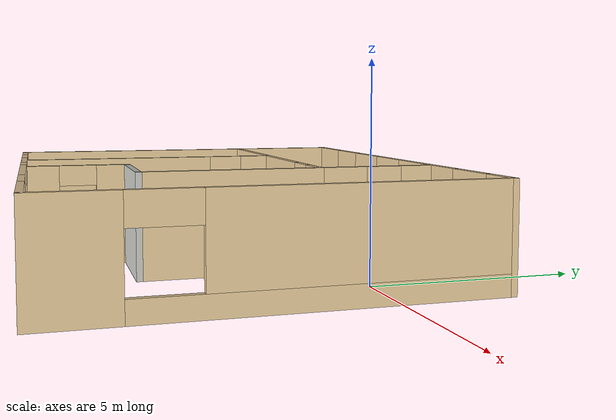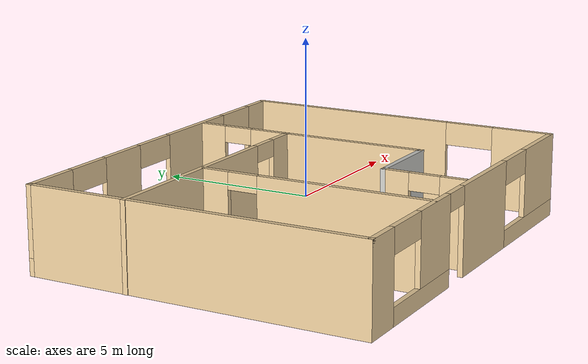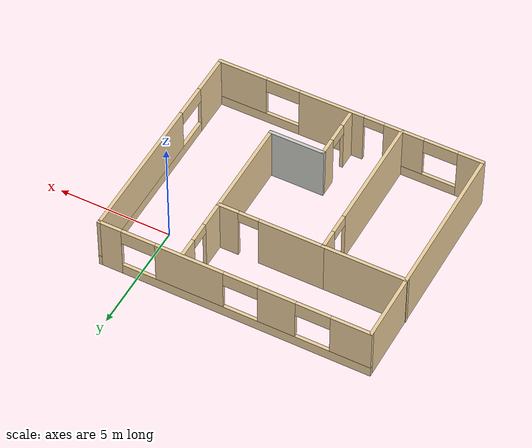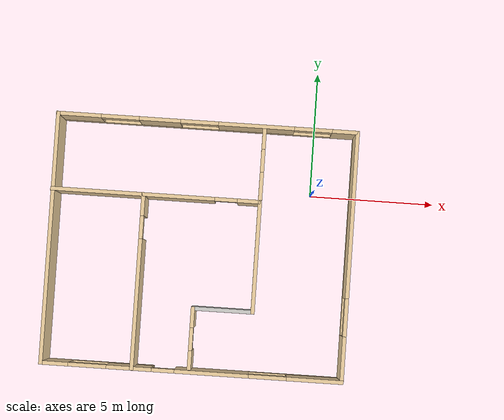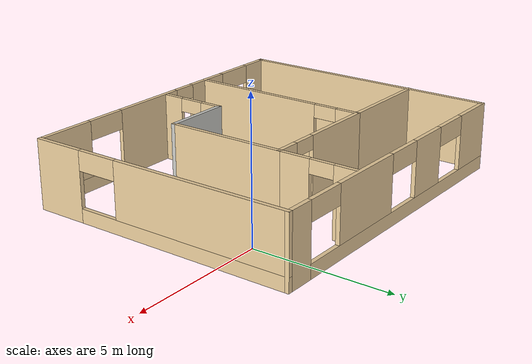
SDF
<?xml version='1.0'?>
<sdf version='1.6'>
  <model name='Building'>
    <pose frame=''>-4.28942 -2.40217 0 0 -0 0</pose>
    <link name='Wall_10'>
      <pose frame=''>-2.33489 -1.48554 0 0 -0 1.5708</pose>
      <visual name='Wall_10_Visual_0'>
        <pose frame=''>-0.911827 0 1.25 0 -0 0</pose>
        <geometry>
          <box>
            <size>5.17635 0.15 2.5</size>
          </box>
        </geometry>
        <material>
          <script>
            <uri>file://media/materials/scripts/gazebo.material</uri>
            <name>Gazebo/Grey</name>
          </script>
          <ambient>0.921569 0.807843 0.615686 1</ambient>
        </material>
        <meta>
          <layer>0</layer>
        </meta>
      </visual>
      <collision name='Wall_10_Collision_0'>
        <geometry>
          <box>
            <size>5.17635 0.15 2.5</size>
          </box>
        </geometry>
        <pose frame=''>-0.911827 0 1.25 0 -0 0</pose>
      </collision>
      <visual name='Wall_10_Visual_1'>
        <pose frame=''>3.03817 0 1.25 0 -0 0</pose>
        <geometry>
          <box>
            <size>0.923654 0.15 2.5</size>
          </box>
        </geometry>
        <material>
          <script>
            <uri>file://media/materials/scripts/gazebo.material</uri>
            <name>Gazebo/Grey</name>
          </script>
          <ambient>0.921569 0.807843 0.615686 1</ambient>
        </material>
        <meta>
          <layer>0</layer>
        </meta>
      </visual>
      <collision name='Wall_10_Collision_1'>
        <geometry>
          <box>
            <size>0.923654 0.15 2.5</size>
          </box>
        </geometry>
        <pose frame=''>3.03817 0 1.25 0 -0 0</pose>
      </collision>
      <visual name='Wall_10_Visual_2'>
        <pose frame=''>2.12635 0 2.25 0 -0 0</pose>
        <geometry>
          <box>
            <size>0.9 0.15 0.5</size>
          </box>
        </geometry>
        <material>
          <script>
            <uri>file://media/materials/scripts/gazebo.material</uri>
            <name>Gazebo/Grey</name>
          </script>
          <ambient>0.921569 0.807843 0.615686 1</ambient>
        </material>
        <meta>
          <layer>0</layer>
        </meta>
      </visual>
      <collision name='Wall_10_Collision_2'>
        <geometry>
          <box>
            <size>0.9 0.15 0.5</size>
          </box>
        </geometry>
        <pose frame=''>2.12635 0 2.25 0 -0 0</pose>
      </collision>
    </link>
    <link name='Wall_11'>
      <collision name='Wall_11_Collision'>
        <geometry>
          <box>
            <size>3.75 0.15 2.5</size>
          </box>
        </geometry>
        <pose frame=''>0 0 1.25 0 -0 0</pose>
      </collision>
      <visual name='Wall_11_Visual'>
        <pose frame=''>0 0 1.25 0 -0 0</pose>
        <geometry>
          <box>
            <size>3.75 0.15 2.5</size>
          </box>
        </geometry>
        <material>
          <script>
            <uri>file://media/materials/scripts/gazebo.material</uri>
            <name>Gazebo/Grey</name>
          </script>
          <ambient>0.921569 0.807843 0.615686 1</ambient>
        </material>
        <meta>
          <layer>0</layer>
        </meta>
      </visual>
      <pose frame=''>-4.13489 1.93946 0 0 -0 3.14159</pose>
    </link>
    <link name='Wall_13'>
      <pose frame=''>-0.034892 1.93946 0 0 -0 0</pose>
      <visual name='Wall_13_Visual_0'>
        <pose frame=''>-0.933301 0 1.25 0 -0 0</pose>
        <geometry>
          <box>
            <size>2.8834 0.15 2.5</size>
          </box>
        </geometry>
        <material>
          <script>
            <uri>file://media/materials/scripts/gazebo.material</uri>
            <name>Gazebo/Grey</name>
          </script>
          <ambient>0.921569 0.807843 0.615686 1</ambient>
        </material>
        <meta>
          <layer>0</layer>
        </meta>
      </visual>
      <collision name='Wall_13_Collision_0'>
        <geometry>
          <box>
            <size>2.8834 0.15 2.5</size>
          </box>
        </geometry>
        <pose frame=''>-0.933301 0 1.25 0 -0 0</pose>
      </collision>
      <visual name='Wall_13_Visual_1'>
        <pose frame=''>1.8917 0 1.25 0 -0 0</pose>
        <geometry>
          <box>
            <size>0.966602 0.15 2.5</size>
          </box>
        </geometry>
        <material>
          <script>
            <uri>file://media/materials/scripts/gazebo.material</uri>
            <name>Gazebo/Grey</name>
          </script>
          <ambient>0.921569 0.807843 0.615686 1</ambient>
        </material>
        <meta>
          <layer>0</layer>
        </meta>
      </visual>
      <collision name='Wall_13_Collision_1'>
        <geometry>
          <box>
            <size>0.966602 0.15 2.5</size>
          </box>
        </geometry>
        <pose frame=''>1.8917 0 1.25 0 -0 0</pose>
      </collision>
      <visual name='Wall_13_Visual_2'>
        <pose frame=''>0.958398 0 2.25 0 -0 0</pose>
        <geometry>
          <box>
            <size>0.9 0.15 0.5</size>
          </box>
        </geometry>
        <material>
          <script>
            <uri>file://media/materials/scripts/gazebo.material</uri>
            <name>Gazebo/Grey</name>
          </script>
          <ambient>0.921569 0.807843 0.615686 1</ambient>
        </material>
        <meta>
          <layer>0</layer>
        </meta>
      </visual>
      <collision name='Wall_13_Collision_2'>
        <geometry>
          <box>
            <size>0.9 0.15 0.5</size>
          </box>
        </geometry>
        <pose frame=''>0.958398 0 2.25 0 -0 0</pose>
      </collision>
    </link>
    <link name='Wall_14'>
      <pose frame=''>2.26511 3.36446 0 0 -0 1.5708</pose>
      <visual name='Wall_14_Visual_0'>
        <pose frame=''>-0.868536 0 1.25 0 -0 0</pose>
        <geometry>
          <box>
            <size>1.26293 0.15 2.5</size>
          </box>
        </geometry>
        <material>
          <script>
            <uri>file://media/materials/scripts/gazebo.material</uri>
            <name>Gazebo/Grey</name>
          </script>
          <ambient>0.921569 0.807843 0.615686 1</ambient>
        </material>
        <meta>
          <layer>0</layer>
        </meta>
      </visual>
      <collision name='Wall_14_Collision_0'>
        <geometry>
          <box>
            <size>1.26293 0.15 2.5</size>
          </box>
        </geometry>
        <pose frame=''>-0.868536 0 1.25 0 -0 0</pose>
      </collision>
      <visual name='Wall_14_Visual_1'>
        <pose frame=''>1.08146 0 1.25 0 -0 0</pose>
        <geometry>
          <box>
            <size>0.837073 0.15 2.5</size>
          </box>
        </geometry>
        <material>
          <script>
            <uri>file://media/materials/scripts/gazebo.material</uri>
            <name>Gazebo/Grey</name>
          </script>
          <ambient>0.921569 0.807843 0.615686 1</ambient>
        </material>
        <meta>
          <layer>0</layer>
        </meta>
      </visual>
      <collision name='Wall_14_Collision_1'>
        <geometry>
          <box>
            <size>0.837073 0.15 2.5</size>
          </box>
        </geometry>
        <pose frame=''>1.08146 0 1.25 0 -0 0</pose>
      </collision>
      <visual name='Wall_14_Visual_2'>
        <pose frame=''>0.212927 0 2.25 0 -0 0</pose>
        <geometry>
          <box>
            <size>0.9 0.15 0.5</size>
          </box>
        </geometry>
        <material>
          <script>
            <uri>file://media/materials/scripts/gazebo.material</uri>
            <name>Gazebo/Grey</name>
          </script>
          <ambient>0.921569 0.807843 0.615686 1</ambient>
        </material>
        <meta>
          <layer>0</layer>
        </meta>
      </visual>
      <collision name='Wall_14_Collision_2'>
        <geometry>
          <box>
            <size>0.9 0.15 0.5</size>
          </box>
        </geometry>
        <pose frame=''>0.212927 0 2.25 0 -0 0</pose>
      </collision>
    </link>
    <link name='Wall_16'>
      <collision name='Wall_16_Collision'>
        <geometry>
          <box>
            <size>4.5 0.15 2.5</size>
          </box>
        </geometry>
        <pose frame=''>0 0 1.25 0 -0 0</pose>
      </collision>
      <visual name='Wall_16_Visual'>
        <pose frame=''>0 0 1.25 0 -0 0</pose>
        <geometry>
          <box>
            <size>4.5 0.15 2.5</size>
          </box>
        </geometry>
        <material>
          <script>
            <uri>file://media/materials/scripts/gazebo.material</uri>
            <name>Gazebo/Grey</name>
          </script>
          <ambient>0.921569 0.807843 0.615686 1</ambient>
        </material>
        <meta>
          <layer>0</layer>
        </meta>
      </visual>
      <pose frame=''>2.26511 -0.235537 0 0 0 -1.5708</pose>
    </link>
    <link name='Wall_17'>
      <collision name='Wall_17_Collision'>
        <geometry>
          <box>
            <size>2.5 0.15 2.5</size>
          </box>
        </geometry>
        <pose frame=''>0 0 1.25 0 -0 0</pose>
      </collision>
      <visual name='Wall_17_Visual'>
        <pose frame=''>0 0 1.25 0 -0 0</pose>
        <geometry>
          <box>
            <size>2.5 0.15 2.5</size>
          </box>
        </geometry>
        <material>
          <script>
            <uri>file://media/materials/scripts/gazebo.material</uri>
            <name>Gazebo/CeilingTiled</name>
          </script>
          <ambient>0.921569 0.807843 0.615686 1</ambient>
        </material>
        <meta>
          <layer>0</layer>
        </meta>
      </visual>
      <pose frame=''>1.09011 -2.41054 0 0 -0 3.14159</pose>
    </link>
    <link name='Wall_18'>
      <pose frame=''>-0.084893 -3.58554 0 0 0 -1.5708</pose>
      <visual name='Wall_18_Visual_0'>
        <pose frame=''>-0.831134 0 1.25 0 -0 0</pose>
        <geometry>
          <box>
            <size>0.837732 0.15 2.5</size>
          </box>
        </geometry>
        <material>
          <script>
            <uri>file://media/materials/scripts/gazebo.material</uri>
            <name>Gazebo/Grey</name>
          </script>
          <ambient>0.921569 0.807843 0.615686 1</ambient>
        </material>
        <meta>
          <layer>0</layer>
        </meta>
      </visual>
      <collision name='Wall_18_Collision_0'>
        <geometry>
          <box>
            <size>0.837732 0.15 2.5</size>
          </box>
        </geometry>
        <pose frame=''>-0.831134 0 1.25 0 -0 0</pose>
      </collision>
      <visual name='Wall_18_Visual_1'>
        <pose frame=''>0.868866 0 1.25 0 -0 0</pose>
        <geometry>
          <box>
            <size>0.762268 0.15 2.5</size>
          </box>
        </geometry>
        <material>
          <script>
            <uri>file://media/materials/scripts/gazebo.material</uri>
            <name>Gazebo/Grey</name>
          </script>
          <ambient>0.921569 0.807843 0.615686 1</ambient>
        </material>
        <meta>
          <layer>0</layer>
        </meta>
      </visual>
      <collision name='Wall_18_Collision_1'>
        <geometry>
          <box>
            <size>0.762268 0.15 2.5</size>
          </box>
        </geometry>
        <pose frame=''>0.868866 0 1.25 0 -0 0</pose>
      </collision>
      <visual name='Wall_18_Visual_2'>
        <pose frame=''>0.037732 0 2.25 0 -0 0</pose>
        <geometry>
          <box>
            <size>0.9 0.15 0.5</size>
          </box>
        </geometry>
        <material>
          <script>
            <uri>file://media/materials/scripts/gazebo.material</uri>
            <name>Gazebo/Grey</name>
          </script>
          <ambient>0.921569 0.807843 0.615686 1</ambient>
        </material>
        <meta>
          <layer>0</layer>
        </meta>
      </visual>
      <collision name='Wall_18_Collision_2'>
        <geometry>
          <box>
            <size>0.9 0.15 0.5</size>
          </box>
        </geometry>
        <pose frame=''>0.037732 0 2.25 0 -0 0</pose>
      </collision>
    </link>
    <link name='Wall_5'>
      <collision name='Wall_5_Collision'>
        <geometry>
          <box>
            <size>10 0.15 2.5</size>
          </box>
        </geometry>
        <pose frame=''>0 0 1.25 0 -0 0</pose>
      </collision>
      <visual name='Wall_5_Visual'>
        <pose frame=''>0 0 1.25 0 -0 0</pose>
        <geometry>
          <box>
            <size>10 0.15 2.5</size>
          </box>
        </geometry>
        <material>
          <script>
            <uri>file://media/materials/scripts/gazebo.material</uri>
            <name>Gazebo/Grey</name>
          </script>
          <ambient>0.921569 0.807843 0.615686 1</ambient>
        </material>
        <meta>
          <layer>0</layer>
        </meta>
      </visual>
      <pose frame=''>-5.91511 0 0 0 0 -1.5708</pose>
    </link>
    <link name='Wall_6'>
      <pose frame=''>0.009892 -4.925 0 0 -0 0</pose>
      <visual name='Wall_6_Visual_0'>
        <pose frame=''>-5.42233 0 1.25 0 -0 0</pose>
        <geometry>
          <box>
            <size>1.15534 0.15 2.5</size>
          </box>
        </geometry>
        <material>
          <script>
            <uri>file://media/materials/scripts/gazebo.material</uri>
            <name>Gazebo/Grey</name>
          </script>
          <ambient>0.921569 0.807843 0.615686 1</ambient>
        </material>
        <meta>
          <layer>0</layer>
        </meta>
      </visual>
      <collision name='Wall_6_Collision_0'>
        <geometry>
          <box>
            <size>1.15534 0.15 2.5</size>
          </box>
        </geometry>
        <pose frame=''>-5.42233 0 1.25 0 -0 0</pose>
      </collision>
      <visual name='Wall_6_Visual_1'>
        <pose frame=''>0.793785 0 1.25 0 -0 0</pose>
        <geometry>
          <box>
            <size>2.92328 0.15 2.5</size>
          </box>
        </geometry>
        <material>
          <script>
            <uri>file://media/materials/scripts/gazebo.material</uri>
            <name>Gazebo/Grey</name>
          </script>
          <ambient>0.921569 0.807843 0.615686 1</ambient>
        </material>
        <meta>
          <layer>0</layer>
        </meta>
      </visual>
      <collision name='Wall_6_Collision_1'>
        <geometry>
          <box>
            <size>2.92328 0.15 2.5</size>
          </box>
        </geometry>
        <pose frame=''>0.793785 0 1.25 0 -0 0</pose>
      </collision>
      <visual name='Wall_6_Visual_2'>
        <pose frame=''>-3.20626 0 0.25 0 -0 0</pose>
        <geometry>
          <box>
            <size>3.27681 0.15 0.5</size>
          </box>
        </geometry>
        <material>
          <script>
            <uri>file://media/materials/scripts/gazebo.material</uri>
            <name>Gazebo/Grey</name>
          </script>
          <ambient>0.921569 0.807843 0.615686 1</ambient>
        </material>
        <meta>
          <layer>0</layer>
        </meta>
      </visual>
      <collision name='Wall_6_Collision_2'>
        <geometry>
          <box>
            <size>3.27681 0.15 0.5</size>
          </box>
        </geometry>
        <pose frame=''>-3.20626 0 0.25 0 -0 0</pose>
      </collision>
      <visual name='Wall_6_Visual_3'>
        <pose frame=''>4.12771 0 0.25 0 -0 0</pose>
        <geometry>
          <box>
            <size>3.74457 0.15 0.5</size>
          </box>
        </geometry>
        <material>
          <script>
            <uri>file://media/materials/scripts/gazebo.material</uri>
            <name>Gazebo/Grey</name>
          </script>
          <ambient>0.921569 0.807843 0.615686 1</ambient>
        </material>
        <meta>
          <layer>0</layer>
        </meta>
      </visual>
      <collision name='Wall_6_Collision_3'>
        <geometry>
          <box>
            <size>3.74457 0.15 0.5</size>
          </box>
        </geometry>
        <pose frame=''>4.12771 0 0.25 0 -0 0</pose>
      </collision>
      <visual name='Wall_6_Visual_4'>
        <pose frame=''>-2.45626 0 1.5 0 -0 0</pose>
        <geometry>
          <box>
            <size>1.77681 0.15 2</size>
          </box>
        </geometry>
        <material>
          <script>
            <uri>file://media/materials/scripts/gazebo.material</uri>
            <name>Gazebo/Grey</name>
          </script>
          <ambient>0.921569 0.807843 0.615686 1</ambient>
        </material>
        <meta>
          <layer>0</layer>
        </meta>
      </visual>
      <collision name='Wall_6_Collision_4'>
        <geometry>
          <box>
            <size>1.77681 0.15 2</size>
          </box>
        </geometry>
        <pose frame=''>-2.45626 0 1.5 0 -0 0</pose>
      </collision>
      <visual name='Wall_6_Visual_5'>
        <pose frame=''>-2.45626 0 1.5 0 -0 0</pose>
        <geometry>
          <box>
            <size>1.77681 0.15 2</size>
          </box>
        </geometry>
        <material>
          <script>
            <uri>file://media/materials/scripts/gazebo.material</uri>
            <name>Gazebo/Grey</name>
          </script>
          <ambient>0.921569 0.807843 0.615686 1</ambient>
        </material>
        <meta>
          <layer>0</layer>
        </meta>
      </visual>
      <collision name='Wall_6_Collision_5'>
        <geometry>
          <box>
            <size>1.77681 0.15 2</size>
          </box>
        </geometry>
        <pose frame=''>-2.45626 0 1.5 0 -0 0</pose>
      </collision>
      <visual name='Wall_6_Visual_6'>
        <pose frame=''>4.87771 0 1.5 0 -0 0</pose>
        <geometry>
          <box>
            <size>2.24457 0.15 2</size>
          </box>
        </geometry>
        <material>
          <script>
            <uri>file://media/materials/scripts/gazebo.material</uri>
            <name>Gazebo/Grey</name>
          </script>
          <ambient>0.921569 0.807843 0.615686 1</ambient>
        </material>
        <meta>
          <layer>0</layer>
        </meta>
      </visual>
      <collision name='Wall_6_Collision_6'>
        <geometry>
          <box>
            <size>2.24457 0.15 2</size>
          </box>
        </geometry>
        <pose frame=''>4.87771 0 1.5 0 -0 0</pose>
      </collision>
      <visual name='Wall_6_Visual_7'>
        <pose frame=''>-4.09466 0 2.15 0 -0 0</pose>
        <geometry>
          <box>
            <size>1.5 0.15 0.7</size>
          </box>
        </geometry>
        <material>
          <script>
            <uri>file://media/materials/scripts/gazebo.material</uri>
            <name>Gazebo/Grey</name>
          </script>
          <ambient>0.921569 0.807843 0.615686 1</ambient>
        </material>
        <meta>
          <layer>0</layer>
        </meta>
      </visual>
      <collision name='Wall_6_Collision_7'>
        <geometry>
          <box>
            <size>1.5 0.15 0.7</size>
          </box>
        </geometry>
        <pose frame=''>-4.09466 0 2.15 0 -0 0</pose>
      </collision>
      <visual name='Wall_6_Visual_8'>
        <pose frame=''>3.00543 0 2.15 0 -0 0</pose>
        <geometry>
          <box>
            <size>1.5 0.15 0.7</size>
          </box>
        </geometry>
        <material>
          <script>
            <uri>file://media/materials/scripts/gazebo.material</uri>
            <name>Gazebo/Grey</name>
          </script>
          <ambient>0.921569 0.807843 0.615686 1</ambient>
        </material>
        <meta>
          <layer>0</layer>
        </meta>
      </visual>
      <collision name='Wall_6_Collision_8'>
        <geometry>
          <box>
            <size>1.5 0.15 0.7</size>
          </box>
        </geometry>
        <pose frame=''>3.00543 0 2.15 0 -0 0</pose>
      </collision>
      <visual name='Wall_6_Visual_9'>
        <pose frame=''>-1.11786 0 2.25 0 -0 0</pose>
        <geometry>
          <box>
            <size>0.9 0.15 0.5</size>
          </box>
        </geometry>
        <material>
          <script>
            <uri>file://media/materials/scripts/gazebo.material</uri>
            <name>Gazebo/Grey</name>
          </script>
          <ambient>0.921569 0.807843 0.615686 1</ambient>
        </material>
        <meta>
          <layer>0</layer>
        </meta>
      </visual>
      <collision name='Wall_6_Collision_9'>
        <geometry>
          <box>
            <size>0.9 0.15 0.5</size>
          </box>
        </geometry>
        <pose frame=''>-1.11786 0 2.25 0 -0 0</pose>
      </collision>
      <visual name='Wall_6_Visual_10'>
        <pose frame=''>-1.11786 0 2.25 0 -0 0</pose>
        <geometry>
          <box>
            <size>0.9 0.15 0.5</size>
          </box>
        </geometry>
        <material>
          <script>
            <uri>file://media/materials/scripts/gazebo.material</uri>
            <name>Gazebo/Grey</name>
          </script>
          <ambient>0.921569 0.807843 0.615686 1</ambient>
        </material>
        <meta>
          <layer>0</layer>
        </meta>
      </visual>
      <collision name='Wall_6_Collision_10'>
        <geometry>
          <box>
            <size>0.9 0.15 0.5</size>
          </box>
        </geometry>
        <pose frame=''>-1.11786 0 2.25 0 -0 0</pose>
      </collision>
    </link>
    <link name='Wall_7'>
      <pose frame=''>5.93489 0 0 0 -0 1.5708</pose>
      <visual name='Wall_7_Visual_0'>
        <pose frame=''>-4.06311 0 1.25 0 -0 0</pose>
        <geometry>
          <box>
            <size>1.87377 0.15 2.5</size>
          </box>
        </geometry>
        <material>
          <script>
            <uri>file://media/materials/scripts/gazebo.material</uri>
            <name>Gazebo/Grey</name>
          </script>
          <ambient>0.921569 0.807843 0.615686 1</ambient>
        </material>
        <meta>
          <layer>0</layer>
        </meta>
      </visual>
      <collision name='Wall_7_Collision_0'>
        <geometry>
          <box>
            <size>1.87377 0.15 2.5</size>
          </box>
        </geometry>
        <pose frame=''>-4.06311 0 1.25 0 -0 0</pose>
      </collision>
      <visual name='Wall_7_Visual_1'>
        <pose frame=''>0.936887 0 0.25 0 -0 0</pose>
        <geometry>
          <box>
            <size>8.12623 0.15 0.5</size>
          </box>
        </geometry>
        <material>
          <script>
            <uri>file://media/materials/scripts/gazebo.material</uri>
            <name>Gazebo/Grey</name>
          </script>
          <ambient>0.921569 0.807843 0.615686 1</ambient>
        </material>
        <meta>
          <layer>0</layer>
        </meta>
      </visual>
      <collision name='Wall_7_Collision_1'>
        <geometry>
          <box>
            <size>8.12623 0.15 0.5</size>
          </box>
        </geometry>
        <pose frame=''>0.936887 0 0.25 0 -0 0</pose>
      </collision>
      <visual name='Wall_7_Visual_2'>
        <pose frame=''>1.68689 0 1.5 0 -0 0</pose>
        <geometry>
          <box>
            <size>6.62623 0.15 2</size>
          </box>
        </geometry>
        <material>
          <script>
            <uri>file://media/materials/scripts/gazebo.material</uri>
            <name>Gazebo/Grey</name>
          </script>
          <ambient>0.921569 0.807843 0.615686 1</ambient>
        </material>
        <meta>
          <layer>0</layer>
        </meta>
      </visual>
      <collision name='Wall_7_Collision_2'>
        <geometry>
          <box>
            <size>6.62623 0.15 2</size>
          </box>
        </geometry>
        <pose frame=''>1.68689 0 1.5 0 -0 0</pose>
      </collision>
      <visual name='Wall_7_Visual_3'>
        <pose frame=''>-2.37623 0 2.15 0 -0 0</pose>
        <geometry>
          <box>
            <size>1.5 0.15 0.7</size>
          </box>
        </geometry>
        <material>
          <script>
            <uri>file://media/materials/scripts/gazebo.material</uri>
            <name>Gazebo/Grey</name>
          </script>
          <ambient>0.921569 0.807843 0.615686 1</ambient>
        </material>
        <meta>
          <layer>0</layer>
        </meta>
      </visual>
      <collision name='Wall_7_Collision_3'>
        <geometry>
          <box>
            <size>1.5 0.15 0.7</size>
          </box>
        </geometry>
        <pose frame=''>-2.37623 0 2.15 0 -0 0</pose>
      </collision>
    </link>
    <link name='Wall_8'>
      <pose frame=''>0.009892 4.925 0 0 -0 3.14159</pose>
      <visual name='Wall_8_Visual_0'>
        <pose frame=''>-5.46101 0 1.25 0 -0 0</pose>
        <geometry>
          <box>
            <size>1.07799 0.15 2.5</size>
          </box>
        </geometry>
        <material>
          <script>
            <uri>file://media/materials/scripts/gazebo.material</uri>
            <name>Gazebo/Grey</name>
          </script>
          <ambient>0.921569 0.807843 0.615686 1</ambient>
        </material>
        <meta>
          <layer>0</layer>
        </meta>
      </visual>
      <collision name='Wall_8_Collision_0'>
        <geometry>
          <box>
            <size>1.07799 0.15 2.5</size>
          </box>
        </geometry>
        <pose frame=''>-5.46101 0 1.25 0 -0 0</pose>
      </collision>
      <visual name='Wall_8_Visual_1'>
        <pose frame=''>0.538993 0 0.25 0 -0 0</pose>
        <geometry>
          <box>
            <size>10.922 0.15 0.5</size>
          </box>
        </geometry>
        <material>
          <script>
            <uri>file://media/materials/scripts/gazebo.material</uri>
            <name>Gazebo/Grey</name>
          </script>
          <ambient>0.921569 0.807843 0.615686 1</ambient>
        </material>
        <meta>
          <layer>0</layer>
        </meta>
      </visual>
      <collision name='Wall_8_Collision_1'>
        <geometry>
          <box>
            <size>10.922 0.15 0.5</size>
          </box>
        </geometry>
        <pose frame=''>0.538993 0 0.25 0 -0 0</pose>
      </collision>
      <visual name='Wall_8_Visual_2'>
        <pose frame=''>-1.91929 0 1.5 0 -0 0</pose>
        <geometry>
          <box>
            <size>3.00544 0.15 2</size>
          </box>
        </geometry>
        <material>
          <script>
            <uri>file://media/materials/scripts/gazebo.material</uri>
            <name>Gazebo/Grey</name>
          </script>
          <ambient>0.921569 0.807843 0.615686 1</ambient>
        </material>
        <meta>
          <layer>0</layer>
        </meta>
      </visual>
      <collision name='Wall_8_Collision_2'>
        <geometry>
          <box>
            <size>3.00544 0.15 2</size>
          </box>
        </geometry>
        <pose frame=''>-1.91929 0 1.5 0 -0 0</pose>
      </collision>
      <visual name='Wall_8_Visual_3'>
        <pose frame=''>1.90229 0 1.5 0 -0 0</pose>
        <geometry>
          <box>
            <size>1.63772 0.15 2</size>
          </box>
        </geometry>
        <material>
          <script>
            <uri>file://media/materials/scripts/gazebo.material</uri>
            <name>Gazebo/Grey</name>
          </script>
          <ambient>0.921569 0.807843 0.615686 1</ambient>
        </material>
        <meta>
          <layer>0</layer>
        </meta>
      </visual>
      <collision name='Wall_8_Collision_3'>
        <geometry>
          <box>
            <size>1.63772 0.15 2</size>
          </box>
        </geometry>
        <pose frame=''>1.90229 0 1.5 0 -0 0</pose>
      </collision>
      <visual name='Wall_8_Visual_4'>
        <pose frame=''>5.11057 0 1.5 0 -0 0</pose>
        <geometry>
          <box>
            <size>1.77886 0.15 2</size>
          </box>
        </geometry>
        <material>
          <script>
            <uri>file://media/materials/scripts/gazebo.material</uri>
            <name>Gazebo/Grey</name>
          </script>
          <ambient>0.921569 0.807843 0.615686 1</ambient>
        </material>
        <meta>
          <layer>0</layer>
        </meta>
      </visual>
      <collision name='Wall_8_Collision_4'>
        <geometry>
          <box>
            <size>1.77886 0.15 2</size>
          </box>
        </geometry>
        <pose frame=''>5.11057 0 1.5 0 -0 0</pose>
      </collision>
      <visual name='Wall_8_Visual_5'>
        <pose frame=''>-4.17201 0 2.15 0 -0 0</pose>
        <geometry>
          <box>
            <size>1.5 0.15 0.7</size>
          </box>
        </geometry>
        <material>
          <script>
            <uri>file://media/materials/scripts/gazebo.material</uri>
            <name>Gazebo/Grey</name>
          </script>
          <ambient>0.921569 0.807843 0.615686 1</ambient>
        </material>
        <meta>
          <layer>0</layer>
        </meta>
      </visual>
      <collision name='Wall_8_Collision_5'>
        <geometry>
          <box>
            <size>1.5 0.15 0.7</size>
          </box>
        </geometry>
        <pose frame=''>-4.17201 0 2.15 0 -0 0</pose>
      </collision>
      <visual name='Wall_8_Visual_6'>
        <pose frame=''>0.333427 0 2.15 0 -0 0</pose>
        <geometry>
          <box>
            <size>1.5 0.15 0.7</size>
          </box>
        </geometry>
        <material>
          <script>
            <uri>file://media/materials/scripts/gazebo.material</uri>
            <name>Gazebo/Grey</name>
          </script>
          <ambient>0.921569 0.807843 0.615686 1</ambient>
        </material>
        <meta>
          <layer>0</layer>
        </meta>
      </visual>
      <collision name='Wall_8_Collision_6'>
        <geometry>
          <box>
            <size>1.5 0.15 0.7</size>
          </box>
        </geometry>
        <pose frame=''>0.333427 0 2.15 0 -0 0</pose>
      </collision>
      <visual name='Wall_8_Visual_7'>
        <pose frame=''>3.47114 0 2.15 0 -0 0</pose>
        <geometry>
          <box>
            <size>1.5 0.15 0.7</size>
          </box>
        </geometry>
        <material>
          <script>
            <uri>file://media/materials/scripts/gazebo.material</uri>
            <name>Gazebo/Grey</name>
          </script>
          <ambient>0.921569 0.807843 0.615686 1</ambient>
        </material>
        <meta>
          <layer>0</layer>
        </meta>
      </visual>
      <collision name='Wall_8_Collision_7'>
        <geometry>
          <box>
            <size>1.5 0.15 0.7</size>
          </box>
        </geometry>
        <pose frame=''>3.47114 0 2.15 0 -0 0</pose>
      </collision>
    </link>
    <static>1</static>
  </model>
</sdf>
